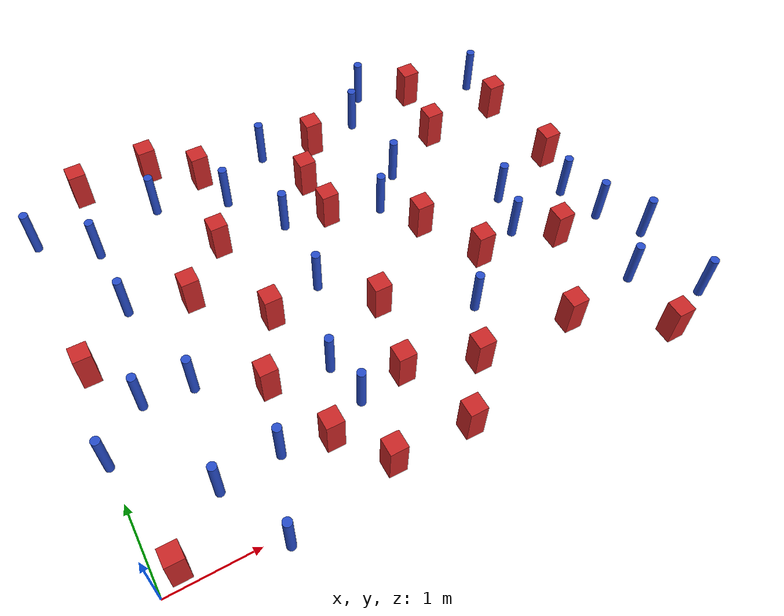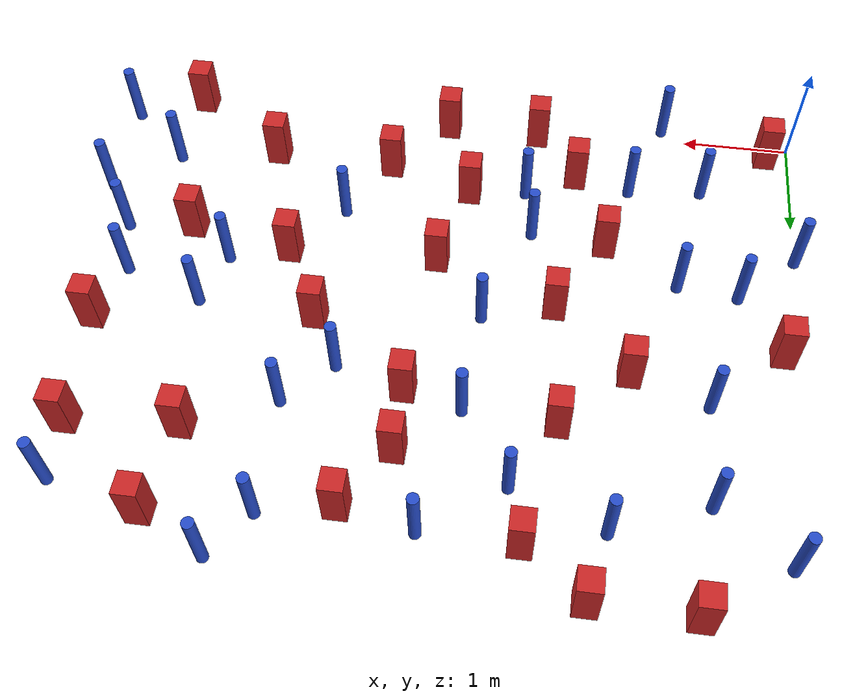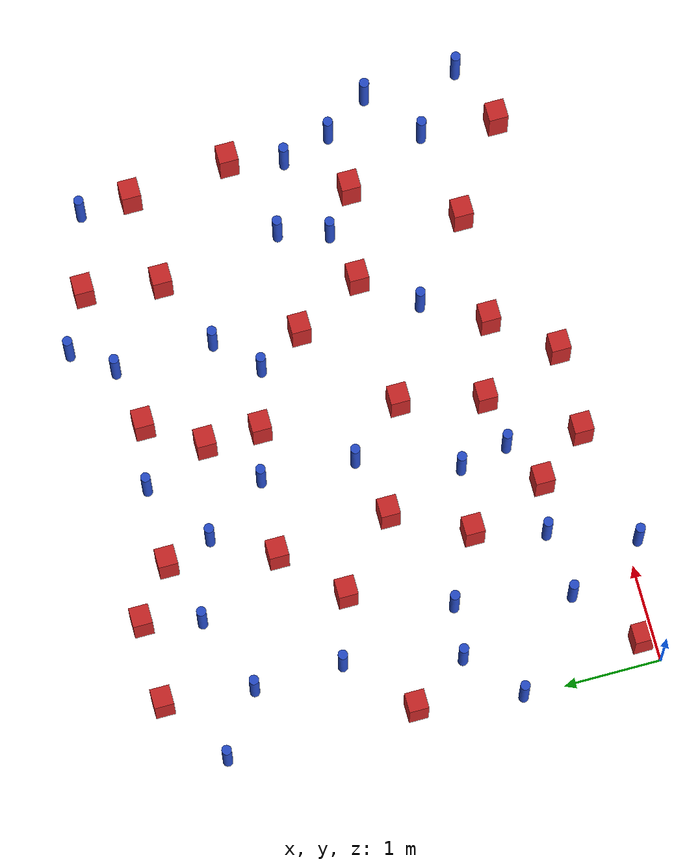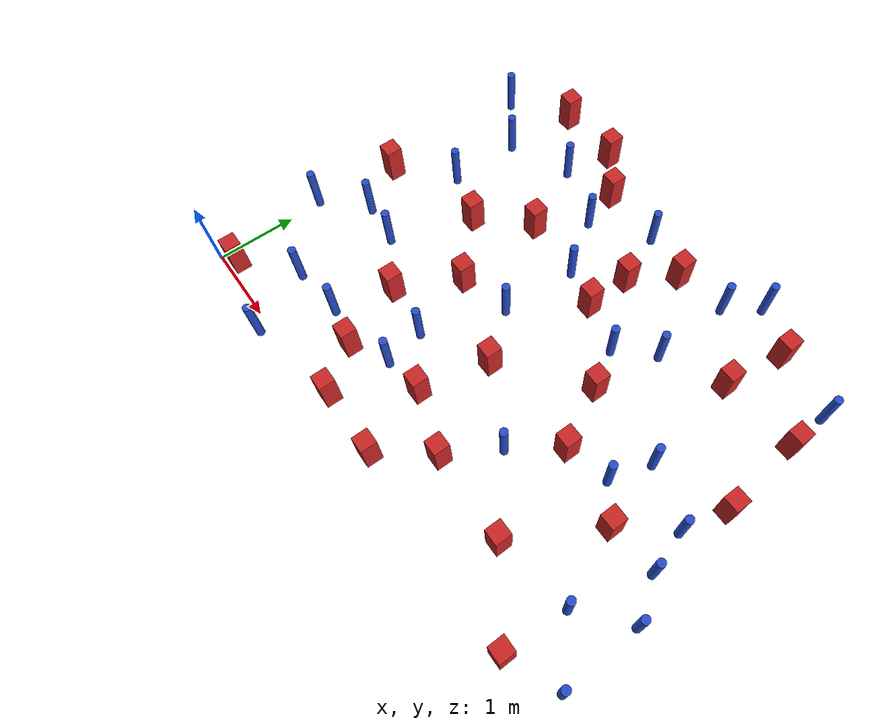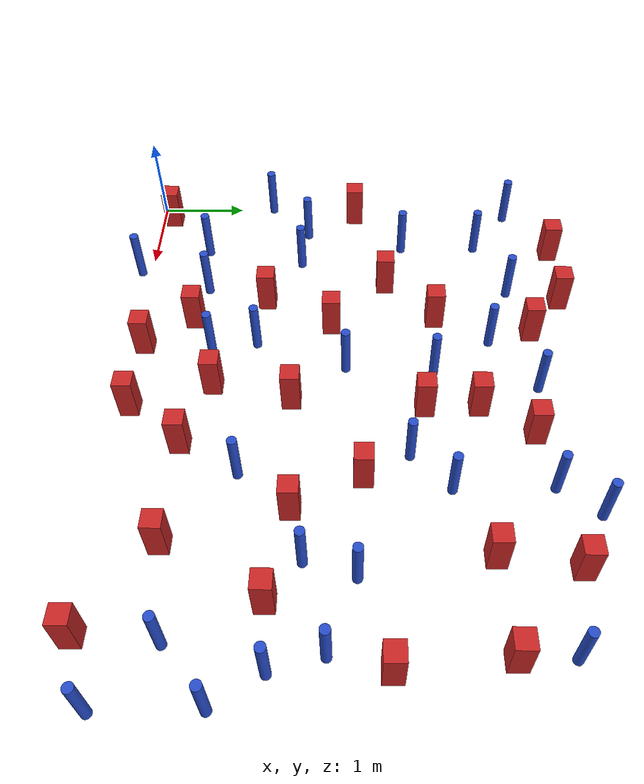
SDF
<sdf version="1.6">
 <model name="dense_76">
  <model name="square_post_obstacle2">
   <static>true</static>
   <pose>5.52280891063 1.71290231488 -6.11067671241e-07 -5.50515727128e-06 -8.79689657224e-07 2.37013304536e-05</pose>
   <link name="link">
    <pose>0 0 0.25 0 -0 0</pose>
    <inertial>
     <mass>100</mass>
     <inertia>
      <ixx>0.166667</ixx>
      <ixy>0</ixy>
      <ixz>0</ixz>
      <iyy>0.166667</iyy>
      <iyz>0</iyz>
      <izz>0.166667</izz>
     </inertia>
    </inertial>
    <collision name="collision"><geometry><box><size>.2 .2 .5</size></box></geometry></collision>
    <visual name="visual">
     <geometry><box><size>.2 .2 .5</size></box></geometry>
     <material>
      <script><name>Gazebo/Red</name><uri>file://media/materials/scripts/gazebo.material</uri></script>
     </material>
    </visual>
   </link>
  </model>
  <model name="square_post_obstacle6">
   <static>true</static>
   <pose>4.57847857241 1.88806926313 -6.11067671241e-07 -5.50515727128e-06 -8.79689657224e-07 2.37013304536e-05</pose>
   <link name="link">
    <pose>0 0 0.25 0 -0 0</pose>
    <inertial>
     <mass>100</mass>
     <inertia>
      <ixx>0.166667</ixx>
      <ixy>0</ixy>
      <ixz>0</ixz>
      <iyy>0.166667</iyy>
      <iyz>0</iyz>
      <izz>0.166667</izz>
     </inertia>
    </inertial>
    <collision name="collision"><geometry><box><size>.2 .2 .5</size></box></geometry></collision>
    <visual name="visual">
     <geometry><box><size>.2 .2 .5</size></box></geometry>
     <material>
      <script><name>Gazebo/Red</name><uri>file://media/materials/scripts/gazebo.material</uri></script>
     </material>
    </visual>
   </link>
  </model>
  <model name="pole_obstacle12">
   <static>true</static>
   <pose>4.16618906073 1.33775884819 -9.47619616065e-06 5.49618799738e-07 2.36310414071e-07 -1.55090534796e-07</pose>
   <link name="link">
    <pose>0 0 0.3 0 -0 0</pose>
    <inertial>
     <mass>1</mass>
     <inertia><ixx>0.145833</ixx><ixy>0</ixy><ixz>0</ixz><iyy>0.145833</iyy><iyz>0</iyz><izz>0.125</izz></inertia>
    </inertial>
    <collision name="collision">
     <geometry><cylinder><radius>0.05</radius><length>.6</length></cylinder></geometry>
    </collision>
    <visual name="visual">
     <geometry><cylinder><radius>0.05</radius><length>.6</length></cylinder></geometry>
     <material>
      <script><name>Gazebo/Blue</name><uri>file://media/materials/scripts/gazebo.material</uri></script>
     </material>
    </visual>
   </link>
  </model>
  <model name="square_post_obstacle10">
   <static>true</static>
   <pose>4.94972560376 0.686517332191 -6.11067671241e-07 -5.50515727128e-06 -8.79689657224e-07 2.37013304536e-05</pose>
   <link name="link">
    <pose>0 0 0.25 0 -0 0</pose>
    <inertial>
     <mass>100</mass>
     <inertia>
      <ixx>0.166667</ixx>
      <ixy>0</ixy>
      <ixz>0</ixz>
      <iyy>0.166667</iyy>
      <iyz>0</iyz>
      <izz>0.166667</izz>
     </inertia>
    </inertial>
    <collision name="collision"><geometry><box><size>.2 .2 .5</size></box></geometry></collision>
    <visual name="visual">
     <geometry><box><size>.2 .2 .5</size></box></geometry>
     <material>
      <script><name>Gazebo/Red</name><uri>file://media/materials/scripts/gazebo.material</uri></script>
     </material>
    </visual>
   </link>
  </model>
  <model name="pole_obstacle14">
   <static>true</static>
   <pose>0.154008466186 4.43080157095 -9.47619616065e-06 5.49618799737e-07 2.36310414061e-07 -1.55090534801e-07</pose>
   <link name="link">
    <pose>0 0 0.3 0 -0 0</pose>
    <inertial>
     <mass>1</mass>
     <inertia><ixx>0.145833</ixx><ixy>0</ixy><ixz>0</ixz><iyy>0.145833</iyy><iyz>0</iyz><izz>0.125</izz></inertia>
    </inertial>
    <collision name="collision">
     <geometry><cylinder><radius>0.05</radius><length>.6</length></cylinder></geometry>
    </collision>
    <visual name="visual">
     <geometry><cylinder><radius>0.05</radius><length>.6</length></cylinder></geometry>
     <material>
      <script><name>Gazebo/Blue</name><uri>file://media/materials/scripts/gazebo.material</uri></script>
     </material>
    </visual>
   </link>
  </model>
  <model name="square_post_obstacle14">
   <static>true</static>
   <pose>3.31326973187 3.81907040545 -6.11067671241e-07 -5.50515727128e-06 -8.79689657224e-07 2.37013304536e-05</pose>
   <link name="link">
    <pose>0 0 0.25 0 -0 0</pose>
    <inertial>
     <mass>100</mass>
     <inertia>
      <ixx>0.166667</ixx>
      <ixy>0</ixy>
      <ixz>0</ixz>
      <iyy>0.166667</iyy>
      <iyz>0</iyz>
      <izz>0.166667</izz>
     </inertia>
    </inertial>
    <collision name="collision"><geometry><box><size>.2 .2 .5</size></box></geometry></collision>
    <visual name="visual">
     <geometry><box><size>.2 .2 .5</size></box></geometry>
     <material>
      <script><name>Gazebo/Red</name><uri>file://media/materials/scripts/gazebo.material</uri></script>
     </material>
    </visual>
   </link>
  </model>
  <model name="pole_obstacle25">
   <static>true</static>
   <pose>4.6078065156 4.8956471403 -9.47619616065e-06 5.49618799737e-07 2.36310414037e-07 -1.55090534814e-07</pose>
   <link name="link">
    <pose>0 0 0.3 0 -0 0</pose>
    <inertial>
     <mass>1</mass>
     <inertia><ixx>0.145833</ixx><ixy>0</ixy><ixz>0</ixz><iyy>0.145833</iyy><iyz>0</iyz><izz>0.125</izz></inertia>
    </inertial>
    <collision name="collision">
     <geometry><cylinder><radius>0.05</radius><length>.6</length></cylinder></geometry>
    </collision>
    <visual name="visual">
     <geometry><cylinder><radius>0.05</radius><length>.6</length></cylinder></geometry>
     <material>
      <script><name>Gazebo/Blue</name><uri>file://media/materials/scripts/gazebo.material</uri></script>
     </material>
    </visual>
   </link>
  </model>
  <model name="pole_obstacle26">
   <static>true</static>
   <pose>1.23101191874 -0.114247584651 -9.47619616065e-06 5.49618799737e-07 2.36310414064e-07 -1.55090534798e-07</pose>
   <link name="link">
    <pose>0 0 0.3 0 -0 0</pose>
    <inertial>
     <mass>1</mass>
     <inertia><ixx>0.145833</ixx><ixy>0</ixy><ixz>0</ixz><iyy>0.145833</iyy><iyz>0</iyz><izz>0.125</izz></inertia>
    </inertial>
    <collision name="collision">
     <geometry><cylinder><radius>0.05</radius><length>.6</length></cylinder></geometry>
    </collision>
    <visual name="visual">
     <geometry><cylinder><radius>0.05</radius><length>.6</length></cylinder></geometry>
     <material>
      <script><name>Gazebo/Blue</name><uri>file://media/materials/scripts/gazebo.material</uri></script>
     </material>
    </visual>
   </link>
  </model>
  <model name="pole_obstacle27">
   <static>true</static>
   <pose>0.76161487265 3.99004415581 -9.47619616065e-06 5.49618799737e-07 2.36310414065e-07 -1.55090534797e-07</pose>
   <link name="link">
    <pose>0 0 0.3 0 -0 0</pose>
    <inertial>
     <mass>1</mass>
     <inertia><ixx>0.145833</ixx><ixy>0</ixy><ixz>0</ixz><iyy>0.145833</iyy><iyz>0</iyz><izz>0.125</izz></inertia>
    </inertial>
    <collision name="collision">
     <geometry><cylinder><radius>0.05</radius><length>.6</length></cylinder></geometry>
    </collision>
    <visual name="visual">
     <geometry><cylinder><radius>0.05</radius><length>.6</length></cylinder></geometry>
     <material>
      <script><name>Gazebo/Blue</name><uri>file://media/materials/scripts/gazebo.material</uri></script>
     </material>
    </visual>
   </link>
  </model>
  <model name="pole_obstacle29">
   <static>true</static>
   <pose>6.00303439838 2.27075554235 -9.47619616065e-06 5.49618799738e-07 2.36310414051e-07 -1.55090534805e-07</pose>
   <link name="link">
    <pose>0 0 0.3 0 -0 0</pose>
    <inertial>
     <mass>1</mass>
     <inertia><ixx>0.145833</ixx><ixy>0</ixy><ixz>0</ixz><iyy>0.145833</iyy><iyz>0</iyz><izz>0.125</izz></inertia>
    </inertial>
    <collision name="collision">
     <geometry><cylinder><radius>0.05</radius><length>.6</length></cylinder></geometry>
    </collision>
    <visual name="visual">
     <geometry><cylinder><radius>0.05</radius><length>.6</length></cylinder></geometry>
     <material>
      <script><name>Gazebo/Blue</name><uri>file://media/materials/scripts/gazebo.material</uri></script>
     </material>
    </visual>
   </link>
  </model>
  <model name="square_post_obstacle25">
   <static>true</static>
   <pose>3.32940242648 0.122497404936 -6.11067671241e-07 -5.50515727128e-06 -8.79689657224e-07 2.37013304536e-05</pose>
   <link name="link">
    <pose>0 0 0.25 0 -0 0</pose>
    <inertial>
     <mass>100</mass>
     <inertia>
      <ixx>0.166667</ixx>
      <ixy>0</ixy>
      <ixz>0</ixz>
      <iyy>0.166667</iyy>
      <iyz>0</iyz>
      <izz>0.166667</izz>
     </inertia>
    </inertial>
    <collision name="collision"><geometry><box><size>.2 .2 .5</size></box></geometry></collision>
    <visual name="visual">
     <geometry><box><size>.2 .2 .5</size></box></geometry>
     <material>
      <script><name>Gazebo/Red</name><uri>file://media/materials/scripts/gazebo.material</uri></script>
     </material>
    </visual>
   </link>
  </model>
  <model name="pole_obstacle33">
   <static>true</static>
   <pose>0.774013618655 3.0777731129 -9.47619616065e-06 5.49618799737e-07 2.36310414066e-07 -1.55090534797e-07</pose>
   <link name="link">
    <pose>0 0 0.3 0 -0 0</pose>
    <inertial>
     <mass>1</mass>
     <inertia><ixx>0.145833</ixx><ixy>0</ixy><ixz>0</ixz><iyy>0.145833</iyy><iyz>0</iyz><izz>0.125</izz></inertia>
    </inertial>
    <collision name="collision">
     <geometry><cylinder><radius>0.05</radius><length>.6</length></cylinder></geometry>
    </collision>
    <visual name="visual">
     <geometry><cylinder><radius>0.05</radius><length>.6</length></cylinder></geometry>
     <material>
      <script><name>Gazebo/Blue</name><uri>file://media/materials/scripts/gazebo.material</uri></script>
     </material>
    </visual>
   </link>
  </model>
  <model name="square_post_obstacle30">
   <static>true</static>
   <pose>2.13366493717 2.23424993839 -6.11067671241e-07 -5.50515727128e-06 -8.79689657224e-07 2.37013304536e-05</pose>
   <link name="link">
    <pose>0 0 0.25 0 -0 0</pose>
    <inertial>
     <mass>100</mass>
     <inertia>
      <ixx>0.166667</ixx>
      <ixy>0</ixy>
      <ixz>0</ixz>
      <iyy>0.166667</iyy>
      <iyz>0</iyz>
      <izz>0.166667</izz>
     </inertia>
    </inertial>
    <collision name="collision"><geometry><box><size>.2 .2 .5</size></box></geometry></collision>
    <visual name="visual">
     <geometry><box><size>.2 .2 .5</size></box></geometry>
     <material>
      <script><name>Gazebo/Red</name><uri>file://media/materials/scripts/gazebo.material</uri></script>
     </material>
    </visual>
   </link>
  </model>
  <model name="pole_obstacle37">
   <static>true</static>
   <pose>3.93217232903 3.06755185462 -9.47619616065e-06 5.49618799737e-07 2.36310414051e-07 -1.55090534807e-07</pose>
   <link name="link">
    <pose>0 0 0.3 0 -0 0</pose>
    <inertial>
     <mass>1</mass>
     <inertia><ixx>0.145833</ixx><ixy>0</ixy><ixz>0</ixz><iyy>0.145833</iyy><iyz>0</iyz><izz>0.125</izz></inertia>
    </inertial>
    <collision name="collision">
     <geometry><cylinder><radius>0.05</radius><length>.6</length></cylinder></geometry>
    </collision>
    <visual name="visual">
     <geometry><cylinder><radius>0.05</radius><length>.6</length></cylinder></geometry>
     <material>
      <script><name>Gazebo/Blue</name><uri>file://media/materials/scripts/gazebo.material</uri></script>
     </material>
    </visual>
   </link>
  </model>
  <model name="pole_obstacle44">
   <static>true</static>
   <pose>0.850793276842 0.679778123242 -9.47619616065e-06 5.49618799737e-07 2.36310414058e-07 -1.55090534802e-07</pose>
   <link name="link">
    <pose>0 0 0.3 0 -0 0</pose>
    <inertial>
     <mass>1</mass>
     <inertia><ixx>0.145833</ixx><ixy>0</ixy><ixz>0</ixz><iyy>0.145833</iyy><iyz>0</iyz><izz>0.125</izz></inertia>
    </inertial>
    <collision name="collision">
     <geometry><cylinder><radius>0.05</radius><length>.6</length></cylinder></geometry>
    </collision>
    <visual name="visual">
     <geometry><cylinder><radius>0.05</radius><length>.6</length></cylinder></geometry>
     <material>
      <script><name>Gazebo/Blue</name><uri>file://media/materials/scripts/gazebo.material</uri></script>
     </material>
    </visual>
   </link>
  </model>
  <model name="square_post_obstacle37">
   <static>true</static>
   <pose>2.0187083807 3.41758027157 -6.11067671241e-07 -5.50515727128e-06 -8.79689657224e-07 2.37013304536e-05</pose>
   <link name="link">
    <pose>0 0 0.25 0 -0 0</pose>
    <inertial>
     <mass>100</mass>
     <inertia>
      <ixx>0.166667</ixx>
      <ixy>0</ixy>
      <ixz>0</ixz>
      <iyy>0.166667</iyy>
      <iyz>0</iyz>
      <izz>0.166667</izz>
     </inertia>
    </inertial>
    <collision name="collision"><geometry><box><size>.2 .2 .5</size></box></geometry></collision>
    <visual name="visual">
     <geometry><box><size>.2 .2 .5</size></box></geometry>
     <material>
      <script><name>Gazebo/Red</name><uri>file://media/materials/scripts/gazebo.material</uri></script>
     </material>
    </visual>
   </link>
  </model>
  <model name="square_post_obstacle38">
   <static>true</static>
   <pose>1.73250454028 1.47040162483 -6.11067671241e-07 -5.50515727128e-06 -8.79689657224e-07 2.37013304536e-05</pose>
   <link name="link">
    <pose>0 0 0.25 0 -0 0</pose>
    <inertial>
     <mass>100</mass>
     <inertia>
      <ixx>0.166667</ixx>
      <ixy>0</ixy>
      <ixz>0</ixz>
      <iyy>0.166667</iyy>
      <iyz>0</iyz>
      <izz>0.166667</izz>
     </inertia>
    </inertial>
    <collision name="collision"><geometry><box><size>.2 .2 .5</size></box></geometry></collision>
    <visual name="visual">
     <geometry><box><size>.2 .2 .5</size></box></geometry>
     <material>
      <script><name>Gazebo/Red</name><uri>file://media/materials/scripts/gazebo.material</uri></script>
     </material>
    </visual>
   </link>
  </model>
  <model name="square_post_obstacle39">
   <static>true</static>
   <pose>0.859296238766 4.90684172289 -6.11067671241e-07 -5.50515727128e-06 -8.79689657224e-07 2.37013304536e-05</pose>
   <link name="link">
    <pose>0 0 0.25 0 -0 0</pose>
    <inertial>
     <mass>100</mass>
     <inertia>
      <ixx>0.166667</ixx>
      <ixy>0</ixy>
      <ixz>0</ixz>
      <iyy>0.166667</iyy>
      <iyz>0</iyz>
      <izz>0.166667</izz>
     </inertia>
    </inertial>
    <collision name="collision"><geometry><box><size>.2 .2 .5</size></box></geometry></collision>
    <visual name="visual">
     <geometry><box><size>.2 .2 .5</size></box></geometry>
     <material>
      <script><name>Gazebo/Red</name><uri>file://media/materials/scripts/gazebo.material</uri></script>
     </material>
    </visual>
   </link>
  </model>
  <model name="pole_obstacle55">
   <static>true</static>
   <pose>6.15128745804 1.7640430691 -9.47619616065e-06 5.49618799738e-07 2.36310414071e-07 -1.55090534796e-07</pose>
   <link name="link">
    <pose>0 0 0.3 0 -0 0</pose>
    <inertial>
     <mass>1</mass>
     <inertia><ixx>0.145833</ixx><ixy>0</ixy><ixz>0</ixz><iyy>0.145833</iyy><iyz>0</iyz><izz>0.125</izz></inertia>
    </inertial>
    <collision name="collision">
     <geometry><cylinder><radius>0.05</radius><length>.6</length></cylinder></geometry>
    </collision>
    <visual name="visual">
     <geometry><cylinder><radius>0.05</radius><length>.6</length></cylinder></geometry>
     <material>
      <script><name>Gazebo/Blue</name><uri>file://media/materials/scripts/gazebo.material</uri></script>
     </material>
    </visual>
   </link>
  </model>
  <model name="pole_obstacle60">
   <static>true</static>
   <pose>5.90443320315 0.844762648818 -9.47619616065e-06 5.49618799737e-07 2.36310414061e-07 -1.550905348e-07</pose>
   <link name="link">
    <pose>0 0 0.3 0 -0 0</pose>
    <inertial>
     <mass>1</mass>
     <inertia><ixx>0.145833</ixx><ixy>0</ixy><ixz>0</ixz><iyy>0.145833</iyy><iyz>0</iyz><izz>0.125</izz></inertia>
    </inertial>
    <collision name="collision">
     <geometry><cylinder><radius>0.05</radius><length>.6</length></cylinder></geometry>
    </collision>
    <visual name="visual">
     <geometry><cylinder><radius>0.05</radius><length>.6</length></cylinder></geometry>
     <material>
      <script><name>Gazebo/Blue</name><uri>file://media/materials/scripts/gazebo.material</uri></script>
     </material>
    </visual>
   </link>
  </model>
  <model name="square_post_obstacle47">
   <static>true</static>
   <pose>2.0501257577 0.653931071198 -6.11067671241e-07 -5.50515727128e-06 -8.79689657224e-07 2.37013304536e-05</pose>
   <link name="link">
    <pose>0 0 0.25 0 -0 0</pose>
    <inertial>
     <mass>100</mass>
     <inertia>
      <ixx>0.166667</ixx>
      <ixy>0</ixy>
      <ixz>0</ixz>
      <iyy>0.166667</iyy>
      <iyz>0</iyz>
      <izz>0.166667</izz>
     </inertia>
    </inertial>
    <collision name="collision"><geometry><box><size>.2 .2 .5</size></box></geometry></collision>
    <visual name="visual">
     <geometry><box><size>.2 .2 .5</size></box></geometry>
     <material>
      <script><name>Gazebo/Red</name><uri>file://media/materials/scripts/gazebo.material</uri></script>
     </material>
    </visual>
   </link>
  </model>
  <model name="square_post_obstacle53">
   <static>true</static>
   <pose>5.0681535336 3.81489389808 -6.11067671241e-07 -5.50515727128e-06 -8.79689657224e-07 2.37013304536e-05</pose>
   <link name="link">
    <pose>0 0 0.25 0 -0 0</pose>
    <inertial>
     <mass>100</mass>
     <inertia>
      <ixx>0.166667</ixx>
      <ixy>0</ixy>
      <ixz>0</ixz>
      <iyy>0.166667</iyy>
      <iyz>0</iyz>
      <izz>0.166667</izz>
     </inertia>
    </inertial>
    <collision name="collision"><geometry><box><size>.2 .2 .5</size></box></geometry></collision>
    <visual name="visual">
     <geometry><box><size>.2 .2 .5</size></box></geometry>
     <material>
      <script><name>Gazebo/Red</name><uri>file://media/materials/scripts/gazebo.material</uri></script>
     </material>
    </visual>
   </link>
  </model>
  <model name="pole_obstacle74">
   <static>true</static>
   <pose>1.56666542717 4.31269795521 -9.47619616065e-06 5.49618799737e-07 2.36310414061e-07 -1.550905348e-07</pose>
   <link name="link">
    <pose>0 0 0.3 0 -0 0</pose>
    <inertial>
     <mass>1</mass>
     <inertia><ixx>0.145833</ixx><ixy>0</ixy><ixz>0</ixz><iyy>0.145833</iyy><iyz>0</iyz><izz>0.125</izz></inertia>
    </inertial>
    <collision name="collision">
     <geometry><cylinder><radius>0.05</radius><length>.6</length></cylinder></geometry>
    </collision>
    <visual name="visual">
     <geometry><cylinder><radius>0.05</radius><length>.6</length></cylinder></geometry>
     <material>
      <script><name>Gazebo/Blue</name><uri>file://media/materials/scripts/gazebo.material</uri></script>
     </material>
    </visual>
   </link>
  </model>
  <model name="square_post_obstacle64">
   <static>true</static>
   <pose>3.22979009191 1.82933681918 -6.11067671241e-07 -5.50515727128e-06 -8.79689657224e-07 2.37013304536e-05</pose>
   <link name="link">
    <pose>0 0 0.25 0 -0 0</pose>
    <inertial>
     <mass>100</mass>
     <inertia>
      <ixx>0.166667</ixx>
      <ixy>0</ixy>
      <ixz>0</ixz>
      <iyy>0.166667</iyy>
      <iyz>0</iyz>
      <izz>0.166667</izz>
     </inertia>
    </inertial>
    <collision name="collision"><geometry><box><size>.2 .2 .5</size></box></geometry></collision>
    <visual name="visual">
     <geometry><box><size>.2 .2 .5</size></box></geometry>
     <material>
      <script><name>Gazebo/Red</name><uri>file://media/materials/scripts/gazebo.material</uri></script>
     </material>
    </visual>
   </link>
  </model>
  <model name="square_post_obstacle68">
   <static>true</static>
   <pose>1.70744773114 4.90140806709 -6.11067671241e-07 -5.50515727128e-06 -8.79689657224e-07 2.37013304536e-05</pose>
   <link name="link">
    <pose>0 0 0.25 0 -0 0</pose>
    <inertial>
     <mass>100</mass>
     <inertia>
      <ixx>0.166667</ixx>
      <ixy>0</ixy>
      <ixz>0</ixz>
      <iyy>0.166667</iyy>
      <iyz>0</iyz>
      <izz>0.166667</izz>
     </inertia>
    </inertial>
    <collision name="collision"><geometry><box><size>.2 .2 .5</size></box></geometry></collision>
    <visual name="visual">
     <geometry><box><size>.2 .2 .5</size></box></geometry>
     <material>
      <script><name>Gazebo/Red</name><uri>file://media/materials/scripts/gazebo.material</uri></script>
     </material>
    </visual>
   </link>
  </model>
  <model name="square_post_obstacle70">
   <static>true</static>
   <pose>6.13473039082 2.83560361172 -6.11067671241e-07 -5.50515727128e-06 -8.79689657224e-07 2.37013304536e-05</pose>
   <link name="link">
    <pose>0 0 0.25 0 -0 0</pose>
    <inertial>
     <mass>100</mass>
     <inertia>
      <ixx>0.166667</ixx>
      <ixy>0</ixy>
      <ixz>0</ixz>
      <iyy>0.166667</iyy>
      <iyz>0</iyz>
      <izz>0.166667</izz>
     </inertia>
    </inertial>
    <collision name="collision"><geometry><box><size>.2 .2 .5</size></box></geometry></collision>
    <visual name="visual">
     <geometry><box><size>.2 .2 .5</size></box></geometry>
     <material>
      <script><name>Gazebo/Red</name><uri>file://media/materials/scripts/gazebo.material</uri></script>
     </material>
    </visual>
   </link>
  </model>
  <model name="pole_obstacle84">
   <static>true</static>
   <pose>2.36414441947 4.02283320076 -9.47619616065e-06 5.49618799737e-07 2.36310414061e-07 -1.55090534801e-07</pose>
   <link name="link">
    <pose>0 0 0.3 0 -0 0</pose>
    <inertial>
     <mass>1</mass>
     <inertia><ixx>0.145833</ixx><ixy>0</ixy><ixz>0</ixz><iyy>0.145833</iyy><iyz>0</iyz><izz>0.125</izz></inertia>
    </inertial>
    <collision name="collision">
     <geometry><cylinder><radius>0.05</radius><length>.6</length></cylinder></geometry>
    </collision>
    <visual name="visual">
     <geometry><cylinder><radius>0.05</radius><length>.6</length></cylinder></geometry>
     <material>
      <script><name>Gazebo/Blue</name><uri>file://media/materials/scripts/gazebo.material</uri></script>
     </material>
    </visual>
   </link>
  </model>
  <model name="square_post_obstacle82">
   <static>true</static>
   <pose>1.45204615345 2.85851295795 -6.11067671241e-07 -5.50515727128e-06 -8.79689657224e-07 2.37013304536e-05</pose>
   <link name="link">
    <pose>0 0 0.25 0 -0 0</pose>
    <inertial>
     <mass>100</mass>
     <inertia>
      <ixx>0.166667</ixx>
      <ixy>0</ixy>
      <ixz>0</ixz>
      <iyy>0.166667</iyy>
      <iyz>0</iyz>
      <izz>0.166667</izz>
     </inertia>
    </inertial>
    <collision name="collision"><geometry><box><size>.2 .2 .5</size></box></geometry></collision>
    <visual name="visual">
     <geometry><box><size>.2 .2 .5</size></box></geometry>
     <material>
      <script><name>Gazebo/Red</name><uri>file://media/materials/scripts/gazebo.material</uri></script>
     </material>
    </visual>
   </link>
  </model>
  <model name="square_post_obstacle86">
   <static>true</static>
   <pose>0.154550164729 2.4933662837 -6.11067671241e-07 -5.50515727128e-06 -8.79689657224e-07 2.37013304536e-05</pose>
   <link name="link">
    <pose>0 0 0.25 0 -0 0</pose>
    <inertial>
     <mass>100</mass>
     <inertia>
      <ixx>0.166667</ixx>
      <ixy>0</ixy>
      <ixz>0</ixz>
      <iyy>0.166667</iyy>
      <iyz>0</iyz>
      <izz>0.166667</izz>
     </inertia>
    </inertial>
    <collision name="collision"><geometry><box><size>.2 .2 .5</size></box></geometry></collision>
    <visual name="visual">
     <geometry><box><size>.2 .2 .5</size></box></geometry>
     <material>
      <script><name>Gazebo/Red</name><uri>file://media/materials/scripts/gazebo.material</uri></script>
     </material>
    </visual>
   </link>
  </model>
  <model name="square_post_obstacle88">
   <static>true</static>
   <pose>0.229770230764 0.148549773029 -6.11067671241e-07 -5.50515727128e-06 -8.79689657224e-07 2.37013304536e-05</pose>
   <link name="link">
    <pose>0 0 0.25 0 -0 0</pose>
    <inertial>
     <mass>100</mass>
     <inertia>
      <ixx>0.166667</ixx>
      <ixy>0</ixy>
      <ixz>0</ixz>
      <iyy>0.166667</iyy>
      <iyz>0</iyz>
      <izz>0.166667</izz>
     </inertia>
    </inertial>
    <collision name="collision"><geometry><box><size>.2 .2 .5</size></box></geometry></collision>
    <visual name="visual">
     <geometry><box><size>.2 .2 .5</size></box></geometry>
     <material>
      <script><name>Gazebo/Red</name><uri>file://media/materials/scripts/gazebo.material</uri></script>
     </material>
    </visual>
   </link>
  </model>
  <model name="pole_obstacle100">
   <static>true</static>
   <pose>5.12226448424 2.02600975388 -9.47619616065e-06 5.49618799737e-07 2.36310414065e-07 -1.55090534797e-07</pose>
   <link name="link">
    <pose>0 0 0.3 0 -0 0</pose>
    <inertial>
     <mass>1</mass>
     <inertia><ixx>0.145833</ixx><ixy>0</ixy><ixz>0</ixz><iyy>0.145833</iyy><iyz>0</iyz><izz>0.125</izz></inertia>
    </inertial>
    <collision name="collision">
     <geometry><cylinder><radius>0.05</radius><length>.6</length></cylinder></geometry>
    </collision>
    <visual name="visual">
     <geometry><cylinder><radius>0.05</radius><length>.6</length></cylinder></geometry>
     <material>
      <script><name>Gazebo/Blue</name><uri>file://media/materials/scripts/gazebo.material</uri></script>
     </material>
    </visual>
   </link>
  </model>
  <model name="square_post_obstacle92">
   <static>true</static>
   <pose>2.22377936489 4.50462653085 -6.11067671241e-07 -5.50515727128e-06 -8.79689657224e-07 2.37013304536e-05</pose>
   <link name="link">
    <pose>0 0 0.25 0 -0 0</pose>
    <inertial>
     <mass>100</mass>
     <inertia>
      <ixx>0.166667</ixx>
      <ixy>0</ixy>
      <ixz>0</ixz>
      <iyy>0.166667</iyy>
      <iyz>0</iyz>
      <izz>0.166667</izz>
     </inertia>
    </inertial>
    <collision name="collision"><geometry><box><size>.2 .2 .5</size></box></geometry></collision>
    <visual name="visual">
     <geometry><box><size>.2 .2 .5</size></box></geometry>
     <material>
      <script><name>Gazebo/Red</name><uri>file://media/materials/scripts/gazebo.material</uri></script>
     </material>
    </visual>
   </link>
  </model>
  <model name="square_post_obstacle99">
   <static>true</static>
   <pose>3.66890360001 4.37015088779 -6.11067671241e-07 -5.50515727128e-06 -8.79689657224e-07 2.37013304536e-05</pose>
   <link name="link">
    <pose>0 0 0.25 0 -0 0</pose>
    <inertial>
     <mass>100</mass>
     <inertia>
      <ixx>0.166667</ixx>
      <ixy>0</ixy>
      <ixz>0</ixz>
      <iyy>0.166667</iyy>
      <iyz>0</iyz>
      <izz>0.166667</izz>
     </inertia>
    </inertial>
    <collision name="collision"><geometry><box><size>.2 .2 .5</size></box></geometry></collision>
    <visual name="visual">
     <geometry><box><size>.2 .2 .5</size></box></geometry>
     <material>
      <script><name>Gazebo/Red</name><uri>file://media/materials/scripts/gazebo.material</uri></script>
     </material>
    </visual>
   </link>
  </model>
  <model name="square_post_obstacle103">
   <static>true</static>
   <pose>5.84700382987 0.0680048802211 -6.11067671241e-07 -5.50515727128e-06 -8.79689657224e-07 2.37013304536e-05</pose>
   <link name="link">
    <pose>0 0 0.25 0 -0 0</pose>
    <inertial>
     <mass>100</mass>
     <inertia>
      <ixx>0.166667</ixx>
      <ixy>0</ixy>
      <ixz>0</ixz>
      <iyy>0.166667</iyy>
      <iyz>0</iyz>
      <izz>0.166667</izz>
     </inertia>
    </inertial>
    <collision name="collision"><geometry><box><size>.2 .2 .5</size></box></geometry></collision>
    <visual name="visual">
     <geometry><box><size>.2 .2 .5</size></box></geometry>
     <material>
      <script><name>Gazebo/Red</name><uri>file://media/materials/scripts/gazebo.material</uri></script>
     </material>
    </visual>
   </link>
  </model>
  <model name="pole_obstacle111">
   <static>true</static>
   <pose>2.76301777043 2.40407274519 -9.47619616065e-06 5.49618799737e-07 2.36310414051e-07 -1.55090534807e-07</pose>
   <link name="link">
    <pose>0 0 0.3 0 -0 0</pose>
    <inertial>
     <mass>1</mass>
     <inertia><ixx>0.145833</ixx><ixy>0</ixy><ixz>0</ixz><iyy>0.145833</iyy><iyz>0</iyz><izz>0.125</izz></inertia>
    </inertial>
    <collision name="collision">
     <geometry><cylinder><radius>0.05</radius><length>.6</length></cylinder></geometry>
    </collision>
    <visual name="visual">
     <geometry><cylinder><radius>0.05</radius><length>.6</length></cylinder></geometry>
     <material>
      <script><name>Gazebo/Blue</name><uri>file://media/materials/scripts/gazebo.material</uri></script>
     </material>
    </visual>
   </link>
  </model>
  <model name="pole_obstacle112">
   <static>true</static>
   <pose>6.00812990225 4.41678415457 -9.47619616065e-06 5.49618799737e-07 2.36310414037e-07 -1.55090534814e-07</pose>
   <link name="link">
    <pose>0 0 0.3 0 -0 0</pose>
    <inertial>
     <mass>1</mass>
     <inertia><ixx>0.145833</ixx><ixy>0</ixy><ixz>0</ixz><iyy>0.145833</iyy><iyz>0</iyz><izz>0.125</izz></inertia>
    </inertial>
    <collision name="collision">
     <geometry><cylinder><radius>0.05</radius><length>.6</length></cylinder></geometry>
    </collision>
    <visual name="visual">
     <geometry><cylinder><radius>0.05</radius><length>.6</length></cylinder></geometry>
     <material>
      <script><name>Gazebo/Blue</name><uri>file://media/materials/scripts/gazebo.material</uri></script>
     </material>
    </visual>
   </link>
  </model>
  <model name="pole_obstacle116">
   <static>true</static>
   <pose>5.27422695581 2.53669862791 -9.47619616065e-06 5.49618799738e-07 2.36310414051e-07 -1.55090534805e-07</pose>
   <link name="link">
    <pose>0 0 0.3 0 -0 0</pose>
    <inertial>
     <mass>1</mass>
     <inertia><ixx>0.145833</ixx><ixy>0</ixy><ixz>0</ixz><iyy>0.145833</iyy><iyz>0</iyz><izz>0.125</izz></inertia>
    </inertial>
    <collision name="collision">
     <geometry><cylinder><radius>0.05</radius><length>.6</length></cylinder></geometry>
    </collision>
    <visual name="visual">
     <geometry><cylinder><radius>0.05</radius><length>.6</length></cylinder></geometry>
     <material>
      <script><name>Gazebo/Blue</name><uri>file://media/materials/scripts/gazebo.material</uri></script>
     </material>
    </visual>
   </link>
  </model>
  <model name="pole_obstacle119">
   <static>true</static>
   <pose>6.4786173951 0.32260310608 -9.47619616065e-06 5.49618799737e-07 2.36310414057e-07 -1.55090534802e-07</pose>
   <link name="link">
    <pose>0 0 0.3 0 -0 0</pose>
    <inertial>
     <mass>1</mass>
     <inertia><ixx>0.145833</ixx><ixy>0</ixy><ixz>0</ixz><iyy>0.145833</iyy><iyz>0</iyz><izz>0.125</izz></inertia>
    </inertial>
    <collision name="collision">
     <geometry><cylinder><radius>0.05</radius><length>.6</length></cylinder></geometry>
    </collision>
    <visual name="visual">
     <geometry><cylinder><radius>0.05</radius><length>.6</length></cylinder></geometry>
     <material>
      <script><name>Gazebo/Blue</name><uri>file://media/materials/scripts/gazebo.material</uri></script>
     </material>
    </visual>
   </link>
  </model>
  <model name="square_post_obstacle123">
   <static>true</static>
   <pose>2.45362216157 0.13420818118 -6.11067671241e-07 -5.50515727128e-06 -8.79689657224e-07 2.37013304536e-05</pose>
   <link name="link">
    <pose>0 0 0.25 0 -0 0</pose>
    <inertial>
     <mass>100</mass>
     <inertia>
      <ixx>0.166667</ixx>
      <ixy>0</ixy>
      <ixz>0</ixz>
      <iyy>0.166667</iyy>
      <iyz>0</iyz>
      <izz>0.166667</izz>
     </inertia>
    </inertial>
    <collision name="collision"><geometry><box><size>.2 .2 .5</size></box></geometry></collision>
    <visual name="visual">
     <geometry><box><size>.2 .2 .5</size></box></geometry>
     <material>
      <script><name>Gazebo/Red</name><uri>file://media/materials/scripts/gazebo.material</uri></script>
     </material>
    </visual>
   </link>
  </model>
  <model name="pole_obstacle135">
   <static>true</static>
   <pose>2.81539083243 3.37007733736 -9.47619616065e-06 5.49618799737e-07 2.36310414051e-07 -1.55090534807e-07</pose>
   <link name="link">
    <pose>0 0 0.3 0 -0 0</pose>
    <inertial>
     <mass>1</mass>
     <inertia><ixx>0.145833</ixx><ixy>0</ixy><ixz>0</ixz><iyy>0.145833</iyy><iyz>0</iyz><izz>0.125</izz></inertia>
    </inertial>
    <collision name="collision">
     <geometry><cylinder><radius>0.05</radius><length>.6</length></cylinder></geometry>
    </collision>
    <visual name="visual">
     <geometry><cylinder><radius>0.05</radius><length>.6</length></cylinder></geometry>
     <material>
      <script><name>Gazebo/Blue</name><uri>file://media/materials/scripts/gazebo.material</uri></script>
     </material>
    </visual>
   </link>
  </model>
  <model name="pole_obstacle138">
   <static>true</static>
   <pose>1.5335910783 0.751207154841 -9.47619616065e-06 5.49618799737e-07 2.36310414065e-07 -1.55090534798e-07</pose>
   <link name="link">
    <pose>0 0 0.3 0 -0 0</pose>
    <inertial>
     <mass>1</mass>
     <inertia><ixx>0.145833</ixx><ixy>0</ixy><ixz>0</ixz><iyy>0.145833</iyy><iyz>0</iyz><izz>0.125</izz></inertia>
    </inertial>
    <collision name="collision">
     <geometry><cylinder><radius>0.05</radius><length>.6</length></cylinder></geometry>
    </collision>
    <visual name="visual">
     <geometry><cylinder><radius>0.05</radius><length>.6</length></cylinder></geometry>
     <material>
      <script><name>Gazebo/Blue</name><uri>file://media/materials/scripts/gazebo.material</uri></script>
     </material>
    </visual>
   </link>
  </model>
  <model name="pole_obstacle140">
   <static>true</static>
   <pose>6.45333046416 1.297415042 -9.47619616065e-06 5.49618799738e-07 2.36310414071e-07 -1.55090534796e-07</pose>
   <link name="link">
    <pose>0 0 0.3 0 -0 0</pose>
    <inertial>
     <mass>1</mass>
     <inertia><ixx>0.145833</ixx><ixy>0</ixy><ixz>0</ixz><iyy>0.145833</iyy><iyz>0</iyz><izz>0.125</izz></inertia>
    </inertial>
    <collision name="collision">
     <geometry><cylinder><radius>0.05</radius><length>.6</length></cylinder></geometry>
    </collision>
    <visual name="visual">
     <geometry><cylinder><radius>0.05</radius><length>.6</length></cylinder></geometry>
     <material>
      <script><name>Gazebo/Blue</name><uri>file://media/materials/scripts/gazebo.material</uri></script>
     </material>
    </visual>
   </link>
  </model>
  <model name="pole_obstacle157">
   <static>true</static>
   <pose>4.30394928928 4.49237670779 -9.47619616065e-06 5.49618799737e-07 2.36310414037e-07 -1.55090534814e-07</pose>
   <link name="link">
    <pose>0 0 0.3 0 -0 0</pose>
    <inertial>
     <mass>1</mass>
     <inertia><ixx>0.145833</ixx><ixy>0</ixy><ixz>0</ixz><iyy>0.145833</iyy><iyz>0</iyz><izz>0.125</izz></inertia>
    </inertial>
    <collision name="collision">
     <geometry><cylinder><radius>0.05</radius><length>.6</length></cylinder></geometry>
    </collision>
    <visual name="visual">
     <geometry><cylinder><radius>0.05</radius><length>.6</length></cylinder></geometry>
     <material>
      <script><name>Gazebo/Blue</name><uri>file://media/materials/scripts/gazebo.material</uri></script>
     </material>
    </visual>
   </link>
  </model>
  <model name="pole_obstacle163">
   <static>true</static>
   <pose>1.06015858304 1.84694749429 -9.47619616065e-06 5.49618799737e-07 2.36310414065e-07 -1.55090534798e-07</pose>
   <link name="link">
    <pose>0 0 0.3 0 -0 0</pose>
    <inertial>
     <mass>1</mass>
     <inertia><ixx>0.145833</ixx><ixy>0</ixy><ixz>0</ixz><iyy>0.145833</iyy><iyz>0</iyz><izz>0.125</izz></inertia>
    </inertial>
    <collision name="collision">
     <geometry><cylinder><radius>0.05</radius><length>.6</length></cylinder></geometry>
    </collision>
    <visual name="visual">
     <geometry><cylinder><radius>0.05</radius><length>.6</length></cylinder></geometry>
     <material>
      <script><name>Gazebo/Blue</name><uri>file://media/materials/scripts/gazebo.material</uri></script>
     </material>
    </visual>
   </link>
  </model>
  <model name="square_post_obstacle165">
   <static>true</static>
   <pose>3.81540600315 0.719061170308 -6.11067671241e-07 -5.50515727128e-06 -8.79689657224e-07 2.37013304536e-05</pose>
   <link name="link">
    <pose>0 0 0.25 0 -0 0</pose>
    <inertial>
     <mass>100</mass>
     <inertia>
      <ixx>0.166667</ixx>
      <ixy>0</ixy>
      <ixz>0</ixz>
      <iyy>0.166667</iyy>
      <iyz>0</iyz>
      <izz>0.166667</izz>
     </inertia>
    </inertial>
    <collision name="collision"><geometry><box><size>.2 .2 .5</size></box></geometry></collision>
    <visual name="visual">
     <geometry><box><size>.2 .2 .5</size></box></geometry>
     <material>
      <script><name>Gazebo/Red</name><uri>file://media/materials/scripts/gazebo.material</uri></script>
     </material>
    </visual>
   </link>
  </model>
  <model name="square_post_obstacle170">
   <static>true</static>
   <pose>5.17890722047 4.60096348195 -6.11067671241e-07 -5.50515727128e-06 -8.79689657224e-07 2.37013304536e-05</pose>
   <link name="link">
    <pose>0 0 0.25 0 -0 0</pose>
    <inertial>
     <mass>100</mass>
     <inertia>
      <ixx>0.166667</ixx>
      <ixy>0</ixy>
      <ixz>0</ixz>
      <iyy>0.166667</iyy>
      <iyz>0</iyz>
      <izz>0.166667</izz>
     </inertia>
    </inertial>
    <collision name="collision"><geometry><box><size>.2 .2 .5</size></box></geometry></collision>
    <visual name="visual">
     <geometry><box><size>.2 .2 .5</size></box></geometry>
     <material>
      <script><name>Gazebo/Red</name><uri>file://media/materials/scripts/gazebo.material</uri></script>
     </material>
    </visual>
   </link>
  </model>
  <model name="square_post_obstacle181">
   <static>true</static>
   <pose>4.20627146506 2.59380501335 -6.11067671241e-07 -5.50515727128e-06 -8.79689657224e-07 2.37013304536e-05</pose>
   <link name="link">
    <pose>0 0 0.25 0 -0 0</pose>
    <inertial>
     <mass>100</mass>
     <inertia>
      <ixx>0.166667</ixx>
      <ixy>0</ixy>
      <ixz>0</ixz>
      <iyy>0.166667</iyy>
      <iyz>0</iyz>
      <izz>0.166667</izz>
     </inertia>
    </inertial>
    <collision name="collision"><geometry><box><size>.2 .2 .5</size></box></geometry></collision>
    <visual name="visual">
     <geometry><box><size>.2 .2 .5</size></box></geometry>
     <material>
      <script><name>Gazebo/Red</name><uri>file://media/materials/scripts/gazebo.material</uri></script>
     </material>
    </visual>
   </link>
  </model>
  <model name="pole_obstacle184">
   <static>true</static>
   <pose>-0.000290167627921 1.42590506893 -9.47619616065e-06 5.49618799737e-07 2.36310414055e-07 -1.55090534803e-07</pose>
   <link name="link">
    <pose>0 0 0.3 0 -0 0</pose>
    <inertial>
     <mass>1</mass>
     <inertia><ixx>0.145833</ixx><ixy>0</ixy><ixz>0</ixz><iyy>0.145833</iyy><iyz>0</iyz><izz>0.125</izz></inertia>
    </inertial>
    <collision name="collision">
     <geometry><cylinder><radius>0.05</radius><length>.6</length></cylinder></geometry>
    </collision>
    <visual name="visual">
     <geometry><cylinder><radius>0.05</radius><length>.6</length></cylinder></geometry>
     <material>
      <script><name>Gazebo/Blue</name><uri>file://media/materials/scripts/gazebo.material</uri></script>
     </material>
    </visual>
   </link>
  </model>
  <model name="square_post_obstacle186">
   <static>true</static>
   <pose>3.3213020806 3.24358520549 -6.11067671241e-07 -5.50515727128e-06 -8.79689657224e-07 2.37013304536e-05</pose>
   <link name="link">
    <pose>0 0 0.25 0 -0 0</pose>
    <inertial>
     <mass>100</mass>
     <inertia>
      <ixx>0.166667</ixx>
      <ixy>0</ixy>
      <ixz>0</ixz>
      <iyy>0.166667</iyy>
      <iyz>0</iyz>
      <izz>0.166667</izz>
     </inertia>
    </inertial>
    <collision name="collision"><geometry><box><size>.2 .2 .5</size></box></geometry></collision>
    <visual name="visual">
     <geometry><box><size>.2 .2 .5</size></box></geometry>
     <material>
      <script><name>Gazebo/Red</name><uri>file://media/materials/scripts/gazebo.material</uri></script>
     </material>
    </visual>
   </link>
  </model>
  <model name="square_post_obstacle196">
   <static>true</static>
   <pose>3.03268789231 0.970915363084 -6.11067671241e-07 -5.50515727128e-06 -8.79689657224e-07 2.37013304536e-05</pose>
   <link name="link">
    <pose>0 0 0.25 0 -0 0</pose>
    <inertial>
     <mass>100</mass>
     <inertia>
      <ixx>0.166667</ixx>
      <ixy>0</ixy>
      <ixz>0</ixz>
      <iyy>0.166667</iyy>
      <iyz>0</iyz>
      <izz>0.166667</izz>
     </inertia>
    </inertial>
    <collision name="collision"><geometry><box><size>.2 .2 .5</size></box></geometry></collision>
    <visual name="visual">
     <geometry><box><size>.2 .2 .5</size></box></geometry>
     <material>
      <script><name>Gazebo/Red</name><uri>file://media/materials/scripts/gazebo.material</uri></script>
     </material>
    </visual>
   </link>
  </model>
  <model name="pole_obstacle203">
   <static>true</static>
   <pose>2.50897401112 0.895459794286 -9.47619616065e-06 5.49618799738e-07 2.36310414075e-07 -1.55090534793e-07</pose>
   <link name="link">
    <pose>0 0 0.3 0 -0 0</pose>
    <inertial>
     <mass>1</mass>
     <inertia><ixx>0.145833</ixx><ixy>0</ixy><ixz>0</ixz><iyy>0.145833</iyy><iyz>0</iyz><izz>0.125</izz></inertia>
    </inertial>
    <collision name="collision">
     <geometry><cylinder><radius>0.05</radius><length>.6</length></cylinder></geometry>
    </collision>
    <visual name="visual">
     <geometry><cylinder><radius>0.05</radius><length>.6</length></cylinder></geometry>
     <material>
      <script><name>Gazebo/Blue</name><uri>file://media/materials/scripts/gazebo.material</uri></script>
     </material>
    </visual>
   </link>
  </model>
  <model name="square_post_obstacle215">
   <static>true</static>
   <pose>6.02490747794 3.88896551757 -6.11067671241e-07 -5.50515727128e-06 -8.79689657224e-07 2.37013304536e-05</pose>
   <link name="link">
    <pose>0 0 0.25 0 -0 0</pose>
    <inertial>
     <mass>100</mass>
     <inertia>
      <ixx>0.166667</ixx>
      <ixy>0</ixy>
      <ixz>0</ixz>
      <iyy>0.166667</iyy>
      <iyz>0</iyz>
      <izz>0.166667</izz>
     </inertia>
    </inertial>
    <collision name="collision"><geometry><box><size>.2 .2 .5</size></box></geometry></collision>
    <visual name="visual">
     <geometry><box><size>.2 .2 .5</size></box></geometry>
     <material>
      <script><name>Gazebo/Red</name><uri>file://media/materials/scripts/gazebo.material</uri></script>
     </material>
    </visual>
   </link>
  </model>
  <model name="pole_obstacle209">
   <static>true</static>
   <pose>3.03556748244 4.49770146986 -9.47619616065e-06 5.49618799738e-07 2.3631041406e-07 -1.55090534801e-07</pose>
   <link name="link">
    <pose>0 0 0.3 0 -0 0</pose>
    <inertial>
     <mass>1</mass>
     <inertia><ixx>0.145833</ixx><ixy>0</ixy><ixz>0</ixz><iyy>0.145833</iyy><iyz>0</iyz><izz>0.125</izz></inertia>
    </inertial>
    <collision name="collision">
     <geometry><cylinder><radius>0.05</radius><length>.6</length></cylinder></geometry>
    </collision>
    <visual name="visual">
     <geometry><cylinder><radius>0.05</radius><length>.6</length></cylinder></geometry>
     <material>
      <script><name>Gazebo/Blue</name><uri>file://media/materials/scripts/gazebo.material</uri></script>
     </material>
    </visual>
   </link>
  </model>
  <model name="pole_obstacle225">
   <static>true</static>
   <pose>2.40813801589 1.39641100876 -9.47619616065e-06 5.49618799737e-07 2.36310414072e-07 -1.55090534793e-07</pose>
   <link name="link">
    <pose>0 0 0.3 0 -0 0</pose>
    <inertial>
     <mass>1</mass>
     <inertia><ixx>0.145833</ixx><ixy>0</ixy><ixz>0</ixz><iyy>0.145833</iyy><iyz>0</iyz><izz>0.125</izz></inertia>
    </inertial>
    <collision name="collision">
     <geometry><cylinder><radius>0.05</radius><length>.6</length></cylinder></geometry>
    </collision>
    <visual name="visual">
     <geometry><cylinder><radius>0.05</radius><length>.6</length></cylinder></geometry>
     <material>
      <script><name>Gazebo/Blue</name><uri>file://media/materials/scripts/gazebo.material</uri></script>
     </material>
    </visual>
   </link>
  </model>
  <model name="pole_obstacle227">
   <static>true</static>
   <pose>0.517787319531 1.90739757991 -9.47619616065e-06 5.49618799737e-07 2.36310414053e-07 -1.55090534803e-07</pose>
   <link name="link">
    <pose>0 0 0.3 0 -0 0</pose>
    <inertial>
     <mass>1</mass>
     <inertia><ixx>0.145833</ixx><ixy>0</ixy><ixz>0</ixz><iyy>0.145833</iyy><iyz>0</iyz><izz>0.125</izz></inertia>
    </inertial>
    <collision name="collision">
     <geometry><cylinder><radius>0.05</radius><length>.6</length></cylinder></geometry>
    </collision>
    <visual name="visual">
     <geometry><cylinder><radius>0.05</radius><length>.6</length></cylinder></geometry>
     <material>
      <script><name>Gazebo/Blue</name><uri>file://media/materials/scripts/gazebo.material</uri></script>
     </material>
    </visual>
   </link>
  </model>
  <model name="pole_obstacle229">
   <static>true</static>
   <pose>4.32798734163 3.47064998095 -9.47619616065e-06 5.49618799738e-07 2.36310414051e-07 -1.55090534805e-07</pose>
   <link name="link">
    <pose>0 0 0.3 0 -0 0</pose>
    <inertial>
     <mass>1</mass>
     <inertia><ixx>0.145833</ixx><ixy>0</ixy><ixz>0</ixz><iyy>0.145833</iyy><iyz>0</iyz><izz>0.125</izz></inertia>
    </inertial>
    <collision name="collision">
     <geometry><cylinder><radius>0.05</radius><length>.6</length></cylinder></geometry>
    </collision>
    <visual name="visual">
     <geometry><cylinder><radius>0.05</radius><length>.6</length></cylinder></geometry>
     <material>
      <script><name>Gazebo/Blue</name><uri>file://media/materials/scripts/gazebo.material</uri></script>
     </material>
    </visual>
   </link>
  </model>
 </model>
</sdf>
